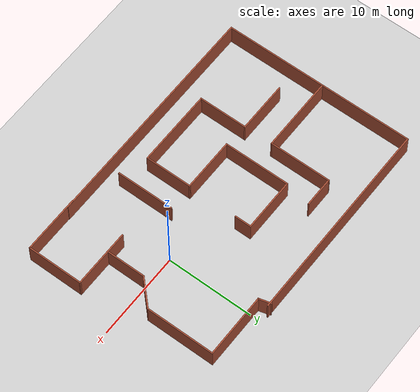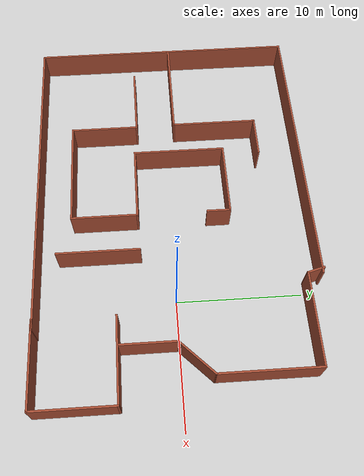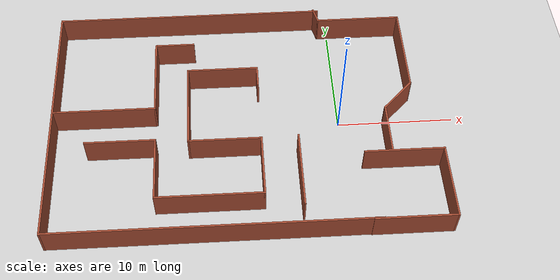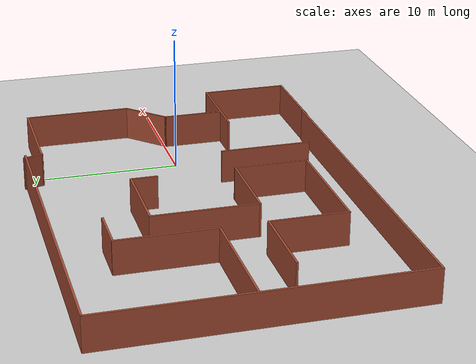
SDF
<sdf version="1.7">
 <world name="default">
  <light name="sun" type="directional">
   <pose>0 0 10 0 -0 0</pose>
   <diffuse>0.8 0.8 0.8 1</diffuse>
   <specular>0.2 0.2 0.2 1</specular>
   <attenuation>
    <range>1000</range>
    <constant>0.9</constant>
    <linear>0.01</linear>
    <quadratic>0.001</quadratic>
   </attenuation>
   <direction>-0.5 0.1 -0.9</direction>
   <spot><inner_angle>0</inner_angle><outer_angle>0</outer_angle><falloff>0</falloff></spot>
  </light>
  <model name="ground_plane">
   <static>1</static>
   <link name="link">
    <collision name="collision">
     <geometry><plane><normal>0 0 1</normal><size>100 100</size></plane></geometry>
     <surface>
      <contact><collide_bitmask>65535</collide_bitmask></contact>
      <friction><ode><mu>100</mu><mu2>50</mu2></ode></friction>
     </surface>
    </collision>
    <visual name="visual">
     <cast_shadows>0</cast_shadows>
     <geometry><plane><normal>0 0 1</normal><size>100 100</size></plane></geometry>
     <material>
      <script><uri>file://media/materials/scripts/gazebo.material</uri><name>Gazebo/Grey</name></script>
     </material>
    </visual>
   </link>
  </model>
  <gravity>0 0 -9.8</gravity>
  <magnetic_field>6e-06 2.3e-05 -4.2e-05</magnetic_field>
  <atmosphere type="adiabatic"/>
  <physics type="ode">
   <max_step_size>0.001</max_step_size>
   <real_time_factor>1</real_time_factor>
   <real_time_update_rate>1000</real_time_update_rate>
  </physics>
  <scene><ambient>0.4 0.4 0.4 1</ambient><background>0.7 0.7 0.7 1</background><shadows>1</shadows></scene>
  <spherical_coordinates>
   <surface_model>EARTH_WGS84</surface_model>
   <latitude_deg>0</latitude_deg>
   <longitude_deg>0</longitude_deg>
   <elevation>0</elevation>
   <heading_deg>0</heading_deg>
  </spherical_coordinates>
  <model name="myworld">
   <pose>-8.13905 0.318644 0 0 -0 0</pose>
   <link name="Wall_10">
    <collision name="Wall_10_Collision">
     <geometry><box><size>3.5 0.15 2.5</size></box></geometry>
     <pose>0 0 1.25 0 -0 0</pose>
    </collision>
    <visual name="Wall_10_Visual">
     <pose>0 0 1.25 0 -0 0</pose>
     <geometry><box><size>3.5 0.15 2.5</size></box></geometry>
     <material>
      <script><uri>file://media/materials/scripts/gazebo.material</uri><name>Gazebo/Bricks</name></script>
      <ambient>1 1 1 1</ambient>
     </material>
     <meta><layer>0</layer></meta>
    </visual>
    <pose>-5.95693 7.60824 0 0 -0 0</pose>
   </link>
   <link name="Wall_12">
    <collision name="Wall_12_Collision">
     <geometry><box><size>6 0.15 2.5</size></box></geometry>
     <pose>0 0 1.25 0 -0 0</pose>
    </collision>
    <visual name="Wall_12_Visual">
     <pose>0 0 1.25 0 -0 0</pose>
     <geometry><box><size>6 0.15 2.5</size></box></geometry>
     <material>
      <script><uri>file://media/materials/scripts/gazebo.material</uri><name>Gazebo/Bricks</name></script>
      <ambient>1 1 1 1</ambient>
     </material>
     <meta><layer>0</layer></meta>
    </visual>
    <pose>-10.475 -2.80911 0 0 -0 0</pose>
   </link>
   <link name="Wall_13">
    <collision name="Wall_13_Collision">
     <geometry><box><size>5.75 0.15 2.5</size></box></geometry>
     <pose>0 0 1.25 0 -0 0</pose>
    </collision>
    <visual name="Wall_13_Visual">
     <pose>0 0 1.25 0 -0 0</pose>
     <geometry><box><size>5.75 0.15 2.5</size></box></geometry>
     <material>
      <script><uri>file://media/materials/scripts/gazebo.material</uri><name>Gazebo/Bricks</name></script>
      <ambient>1 1 1 1</ambient>
     </material>
     <meta><layer>0</layer></meta>
    </visual>
    <pose>-7.55004 -5.60911 0 0 -0 -1.5708</pose>
   </link>
   <link name="Wall_14">
    <collision name="Wall_14_Collision">
     <geometry><box><size>9 0.15 2.5</size></box></geometry>
     <pose>0 0 1.25 0 -0 0</pose>
    </collision>
    <visual name="Wall_14_Visual">
     <pose>0 0 1.25 0 -0 0</pose>
     <geometry><box><size>9 0.15 2.5</size></box></geometry>
     <material>
      <script><uri>file://media/materials/scripts/gazebo.material</uri><name>Gazebo/Bricks</name></script>
      <ambient>1 1 1 1</ambient>
     </material>
     <meta><layer>0</layer></meta>
    </visual>
    <pose>-3.12504 -8.40911 0 0 -0 0</pose>
   </link>
   <link name="Wall_15">
    <collision name="Wall_15_Collision">
     <geometry><box><size>5.5 0.15 2.5</size></box></geometry>
     <pose>0 0 1.25 0 -0 0</pose>
    </collision>
    <visual name="Wall_15_Visual">
     <pose>0 0 1.25 0 -0 0</pose>
     <geometry><box><size>5.5 0.15 2.5</size></box></geometry>
     <material>
      <script><uri>file://media/materials/scripts/gazebo.material</uri><name>Gazebo/Bricks</name></script>
      <ambient>1 1 1 1</ambient>
     </material>
     <meta><layer>0</layer></meta>
    </visual>
    <pose>1.29996 -5.73411 0 0 -0 1.5708</pose>
   </link>
   <link name="Wall_16">
    <collision name="Wall_16_Collision">
     <geometry><box><size>6.25 0.15 2.5</size></box></geometry>
     <pose>0 0 1.25 0 -0 0</pose>
    </collision>
    <visual name="Wall_16_Visual">
     <pose>0 0 1.25 0 -0 0</pose>
     <geometry><box><size>6.25 0.15 2.5</size></box></geometry>
     <material>
      <script><uri>file://media/materials/scripts/gazebo.material</uri><name>Gazebo/Bricks</name></script>
      <ambient>1 1 1 1</ambient>
     </material>
     <meta><layer>0</layer></meta>
    </visual>
    <pose>-1.75004 -3.05911 0 0 -0 3.14159</pose>
   </link>
   <link name="Wall_17">
    <collision name="Wall_17_Collision">
     <geometry><box><size>7.75 0.15 2.5</size></box></geometry>
     <pose>0 0 1.25 0 -0 0</pose>
    </collision>
    <visual name="Wall_17_Visual">
     <pose>0 0 1.25 0 -0 0</pose>
     <geometry><box><size>7.75 0.15 2.5</size></box></geometry>
     <material>
      <script><uri>file://media/materials/scripts/gazebo.material</uri><name>Gazebo/Bricks</name></script>
      <ambient>1 1 1 1</ambient>
     </material>
     <meta><layer>0</layer></meta>
    </visual>
    <pose>-4.80004 0.740887 0 0 -0 1.5708</pose>
   </link>
   <link name="Wall_18">
    <collision name="Wall_18_Collision">
     <geometry><box><size>6.25 0.15 2.5</size></box></geometry>
     <pose>0 0 1.25 0 -0 0</pose>
    </collision>
    <visual name="Wall_18_Visual">
     <pose>0 0 1.25 0 -0 0</pose>
     <geometry><box><size>6.25 0.15 2.5</size></box></geometry>
     <material>
      <script><uri>file://media/materials/scripts/gazebo.material</uri><name>Gazebo/Bricks</name></script>
      <ambient>1 1 1 1</ambient>
     </material>
     <meta><layer>0</layer></meta>
    </visual>
    <pose>-1.75004 4.54089 0 0 -0 0</pose>
   </link>
   <link name="Wall_19">
    <collision name="Wall_19_Collision">
     <geometry><box><size>2 0.15 2.5</size></box></geometry>
     <pose>0 0 1.25 0 -0 0</pose>
    </collision>
    <visual name="Wall_19_Visual">
     <pose>0 0 1.25 0 -0 0</pose>
     <geometry><box><size>2 0.15 2.5</size></box></geometry>
     <material>
      <script><uri>file://media/materials/scripts/gazebo.material</uri><name>Gazebo/Bricks</name></script>
      <ambient>1 1 1 1</ambient>
     </material>
     <meta><layer>0</layer></meta>
    </visual>
    <pose>1.29996 3.61589 0 0 -0 -1.5708</pose>
   </link>
   <link name="Wall_2">
    <collision name="Wall_2_Collision">
     <geometry><box><size>27 0.15 2.5</size></box></geometry>
     <pose>0 0 1.25 0 -0 0</pose>
    </collision>
    <visual name="Wall_2_Visual">
     <pose>0 0 1.25 0 -0 0</pose>
     <geometry><box><size>27 0.15 2.5</size></box></geometry>
     <material>
      <script><uri>file://media/materials/scripts/gazebo.material</uri><name>Gazebo/Bricks</name></script>
      <ambient>1 1 1 1</ambient>
     </material>
     <meta><layer>0</layer></meta>
    </visual>
    <pose>-2.92595 -11.2186 0 0 -0 3.14159</pose>
   </link>
   <link name="Wall_21">
    <collision name="Wall_21_Collision">
     <geometry><box><size>6.75 0.15 2.5</size></box></geometry>
     <pose>0 0 1.25 0 -0 0</pose>
    </collision>
    <visual name="Wall_21_Visual">
     <pose>0 0 1.25 0 -0 0</pose>
     <geometry><box><size>6.75 0.15 2.5</size></box></geometry>
     <material>
      <script><uri>file://media/materials/scripts/gazebo.material</uri><name>Gazebo/Bricks</name></script>
      <ambient>1 1 1 1</ambient>
     </material>
     <meta><layer>0</layer></meta>
    </visual>
    <pose>4.40042 -6.27094 0 0 -0 -1.5708</pose>
   </link>
   <link name="Wall_23">
    <collision name="Wall_23_Collision">
     <geometry><box><size>6.75 0.15 2.5</size></box></geometry>
     <pose>0 0 1.25 0 -0 0</pose>
    </collision>
    <visual name="Wall_23_Visual">
     <pose>0 0 1.25 0 -0 0</pose>
     <geometry><box><size>6.75 0.15 2.5</size></box></geometry>
     <material>
      <script><uri>file://media/materials/scripts/gazebo.material</uri><name>Gazebo/Bricks</name></script>
      <ambient>1 1 1 1</ambient>
     </material>
     <meta><layer>0</layer></meta>
    </visual>
    <pose>13.051 -11.2692 0 0 -0 0</pose>
   </link>
   <link name="Wall_24">
    <collision name="Wall_24_Collision">
     <geometry><box><size>6.5 0.15 2.5</size></box></geometry>
     <pose>0 0 1.25 0 -0 0</pose>
    </collision>
    <visual name="Wall_24_Visual">
     <pose>0 0 1.25 0 -0 0</pose>
     <geometry><box><size>6.5 0.15 2.5</size></box></geometry>
     <material>
      <script><uri>file://media/materials/scripts/gazebo.material</uri><name>Gazebo/Bricks</name></script>
      <ambient>1 1 1 1</ambient>
     </material>
     <meta><layer>0</layer></meta>
    </visual>
    <pose>16.351 -8.09425 0 0 -0 1.5708</pose>
   </link>
   <link name="Wall_25">
    <collision name="Wall_25_Collision">
     <geometry><box><size>6.75 0.15 2.5</size></box></geometry>
     <pose>0 0 1.25 0 -0 0</pose>
    </collision>
    <visual name="Wall_25_Visual">
     <pose>0 0 1.25 0 -0 0</pose>
     <geometry><box><size>6.75 0.15 2.5</size></box></geometry>
     <material>
      <script><uri>file://media/materials/scripts/gazebo.material</uri><name>Gazebo/Bricks</name></script>
      <ambient>1 1 1 1</ambient>
     </material>
     <meta><layer>0</layer></meta>
    </visual>
    <pose>13.051 -4.91925 0 0 -0 3.14159</pose>
   </link>
   <link name="Wall_27">
    <collision name="Wall_27_Collision">
     <geometry><box><size>1.5 0.15 2.5</size></box></geometry>
     <pose>0 0 1.25 0 -0 0</pose>
    </collision>
    <visual name="Wall_27_Visual">
     <pose>0 0 1.25 0 -0 0</pose>
     <geometry><box><size>1.5 0.15 2.5</size></box></geometry>
     <material>
      <script><uri>file://media/materials/scripts/gazebo.material</uri><name>Gazebo/Bricks</name></script>
      <ambient>1 1 1 1</ambient>
     </material>
     <meta><layer>0</layer></meta>
    </visual>
    <pose>7.05673 10.6004 0 0 -0 -1.309</pose>
   </link>
   <link name="Wall_28">
    <collision name="Wall_28_Collision">
     <geometry><box><size>7.5 0.15 2.5</size></box></geometry>
     <pose>0 0 1.25 0 -0 0</pose>
    </collision>
    <visual name="Wall_28_Visual">
     <pose>0 0 1.25 0 -0 0</pose>
     <geometry><box><size>7.5 0.15 2.5</size></box></geometry>
     <material>
      <script><uri>file://media/materials/scripts/gazebo.material</uri><name>Gazebo/Bricks</name></script>
      <ambient>1 1 1 1</ambient>
     </material>
     <meta><layer>0</layer></meta>
    </visual>
    <pose>10.9064 9.94839 0 0 -0 0</pose>
   </link>
   <link name="Wall_29">
    <collision name="Wall_29_Collision">
     <geometry><box><size>8 0.15 2.5</size></box></geometry>
     <pose>0 0 1.25 0 -0 0</pose>
    </collision>
    <visual name="Wall_29_Visual">
     <pose>0 0 1.25 0 -0 0</pose>
     <geometry><box><size>8 0.15 2.5</size></box></geometry>
     <material>
      <script><uri>file://media/materials/scripts/gazebo.material</uri><name>Gazebo/Bricks</name></script>
      <ambient>1 1 1 1</ambient>
     </material>
     <meta><layer>0</layer></meta>
    </visual>
    <pose>14.5814 6.02339 0 0 -0 -1.5708</pose>
   </link>
   <link name="Wall_3">
    <collision name="Wall_3_Collision">
     <geometry><box><size>22.5 0.15 2.5</size></box></geometry>
     <pose>0 0 1.25 0 -0 0</pose>
    </collision>
    <visual name="Wall_3_Visual">
     <pose>0 0 1.25 0 -0 0</pose>
     <geometry><box><size>22.5 0.15 2.5</size></box></geometry>
     <material>
      <script><uri>file://media/materials/scripts/gazebo.material</uri><name>Gazebo/Bricks</name></script>
      <ambient>1 1 1 1</ambient>
     </material>
     <meta><layer>0</layer></meta>
    </visual>
    <pose>-16.351 -0.043644 0 0 -0 1.5708</pose>
   </link>
   <link name="Wall_30">
    <collision name="Wall_30_Collision">
     <geometry><box><size>3.75 0.15 2.5</size></box></geometry>
     <pose>0 0 1.25 0 -0 0</pose>
    </collision>
    <visual name="Wall_30_Visual">
     <pose>0 0 1.25 0 -0 0</pose>
     <geometry><box><size>3.75 0.15 2.5</size></box></geometry>
     <material>
      <script><uri>file://media/materials/scripts/gazebo.material</uri><name>Gazebo/Bricks</name></script>
      <ambient>1 1 1 1</ambient>
     </material>
     <meta><layer>0</layer></meta>
    </visual>
    <pose>13.3086 0.8256 0 0 -0 -2.35619</pose>
   </link>
   <link name="Wall_31">
    <collision name="Wall_31_Collision">
     <geometry><box><size>4.5 0.15 2.5</size></box></geometry>
     <pose>0 0 1.25 0 -0 0</pose>
    </collision>
    <visual name="Wall_31_Visual">
     <pose>0 0 1.25 0 -0 0</pose>
     <geometry><box><size>4.5 0.15 2.5</size></box></geometry>
     <material>
      <script><uri>file://media/materials/scripts/gazebo.material</uri><name>Gazebo/Bricks</name></script>
      <ambient>1 1 1 1</ambient>
     </material>
     <meta><layer>0</layer></meta>
    </visual>
    <pose>12.0359 -2.62219 0 0 -0 -1.5708</pose>
   </link>
   <link name="Wall_4">
    <collision name="Wall_4_Collision">
     <geometry><box><size>23.75 0.15 2.5</size></box></geometry>
     <pose>0 0 1.25 0 -0 0</pose>
    </collision>
    <visual name="Wall_4_Visual">
     <pose>0 0 1.25 0 -0 0</pose>
     <geometry><box><size>23.75 0.15 2.5</size></box></geometry>
     <material>
      <script><uri>file://media/materials/scripts/gazebo.material</uri><name>Gazebo/Bricks</name></script>
      <ambient>1 1 1 1</ambient>
     </material>
     <meta><layer>0</layer></meta>
    </visual>
    <pose>-4.55095 11.1314 0 0 -0 0</pose>
   </link>
   <link name="Wall_8">
    <collision name="Wall_8_Collision">
     <geometry><box><size>8.75 0.15 2.5</size></box></geometry>
     <pose>0 0 1.25 0 -0 0</pose>
    </collision>
    <visual name="Wall_8_Visual">
     <pose>0 0 1.25 0 -0 0</pose>
     <geometry><box><size>8.75 0.15 2.5</size></box></geometry>
     <material>
      <script><uri>file://media/materials/scripts/gazebo.material</uri><name>Gazebo/Bricks</name></script>
      <ambient>1 1 1 1</ambient>
     </material>
     <meta><layer>0</layer></meta>
    </visual>
    <pose>-11.9319 0.508244 0 0 -0 0</pose>
   </link>
   <link name="Wall_9">
    <collision name="Wall_9_Collision">
     <geometry><box><size>7.25 0.15 2.5</size></box></geometry>
     <pose>0 0 1.25 0 -0 0</pose>
    </collision>
    <visual name="Wall_9_Visual">
     <pose>0 0 1.25 0 -0 0</pose>
     <geometry><box><size>7.25 0.15 2.5</size></box></geometry>
     <material>
      <script><uri>file://media/materials/scripts/gazebo.material</uri><name>Gazebo/Bricks</name></script>
      <ambient>1 1 1 1</ambient>
     </material>
     <meta><layer>0</layer></meta>
    </visual>
    <pose>-7.63193 4.05824 0 0 -0 1.5708</pose>
   </link>
   <static>1</static>
  </model>
 </world>
</sdf>
